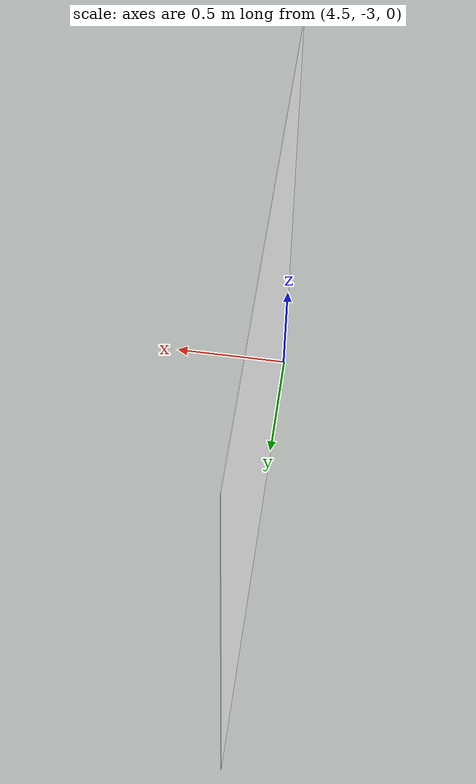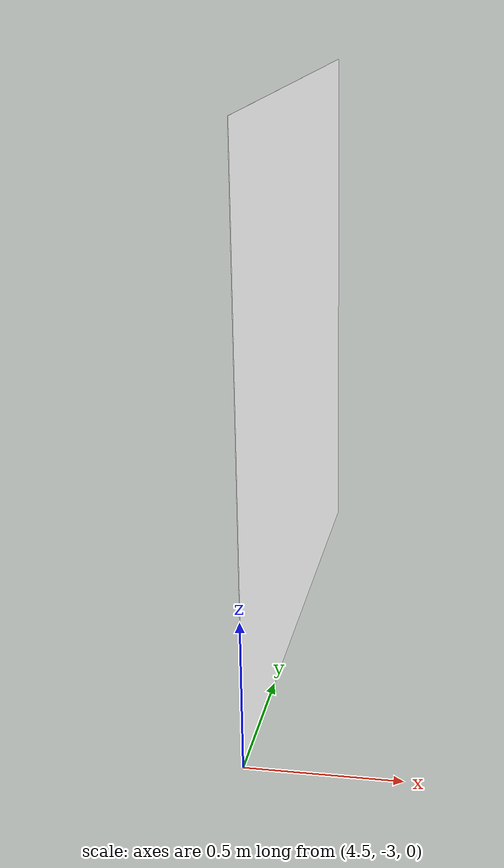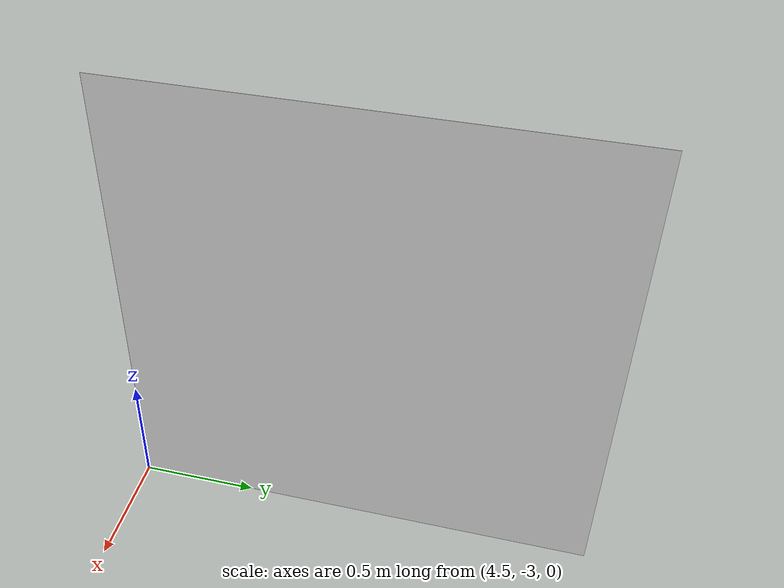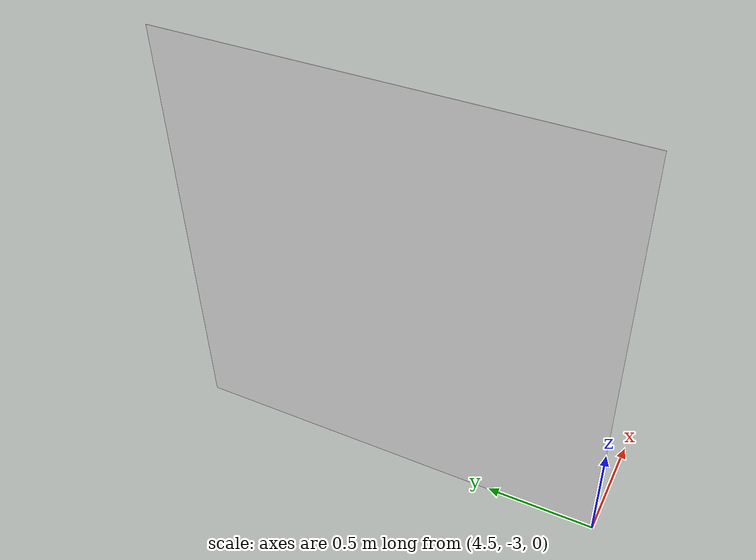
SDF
<?xml version="1.0" encoding="UTF-8"?>
<sdf version='1.9'>
  <model name='arucotag1'>
    <static>true</static>
    <pose>4.5 -2.0 1 0 -1.57 0</pose>
    <link name='base'>
      <visual name='base_visual'>
        <geometry>
          <plane>
            <normal>0 0 1</normal>
            <size>2 2</size>
          </plane>
        </geometry>
        <material>
          <diffuse>1 1 1 1</diffuse>
          <specular>0.4 0.4 0.4 1</specular>
          <pbr>
            <metal>
              <albedo_map>file:///home/ishan/husarion_ws/src/husarion_gz_worlds/models/arucotag1/arucotag1.jpeg</albedo_map>
            </metal>
          </pbr>
        </material>
      </visual>
    </link>
  </model>
</sdf>
